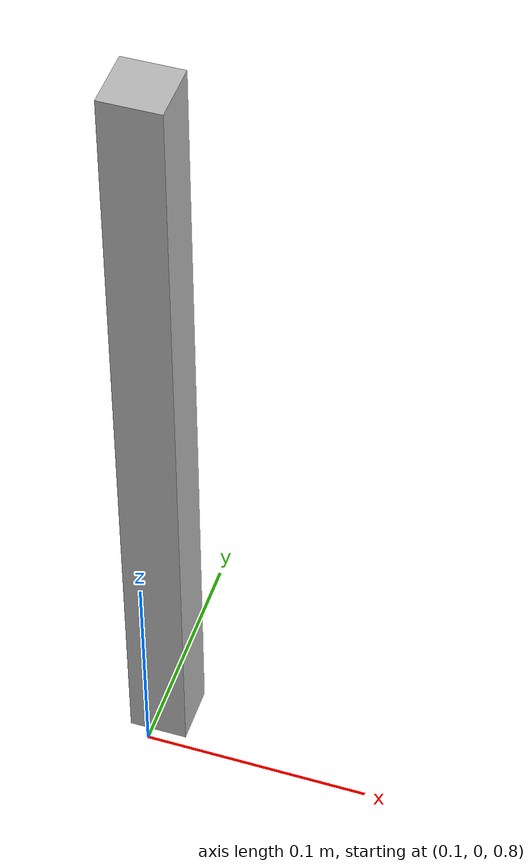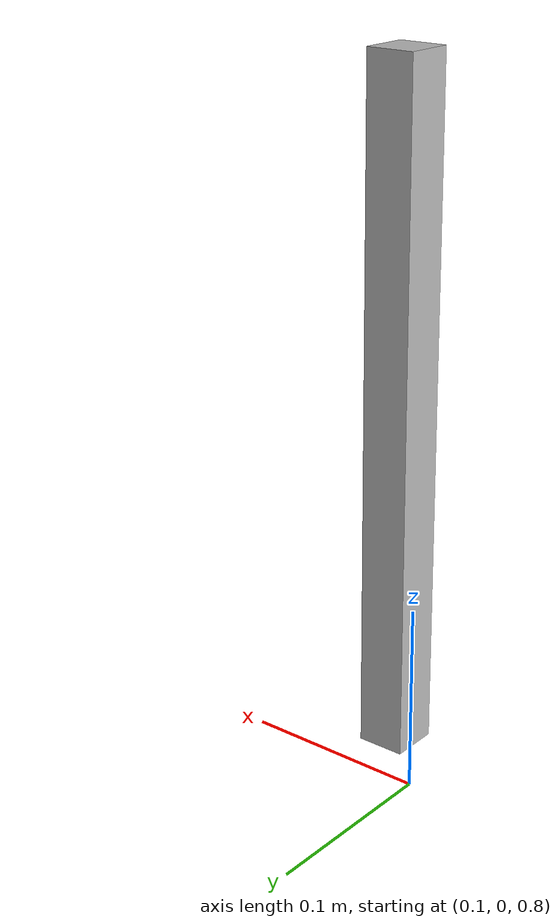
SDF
<?xml version="1.0"?>
<sdf version="1.6">
  <world name="default">

    <physics type="dart">
      <real_time_update_rate>0.000000</real_time_update_rate>
    </physics>

    <include>
      <uri>model://ground_plane</uri>
    </include>

    <include>
      <uri>model://sun</uri>
    </include>

    <model name="custom_box">
      <pose>0.11 0 1 0 0 0</pose>
      <link name="link">

        <inertial>
          <mass>0.05</mass>
          <inertia>
            <ixx>0.0083</ixx>
            <ixy>0.0</ixy>
            <ixz>0.0</ixz>
            <iyy>0.0083</iyy>
            <iyz>0.0</iyz>
            <izz>0.0083</izz>
          </inertia>
        </inertial>

        <collision name="box_collision">
          <geometry>
            <box>
              <size>0.025 0.025 0.35</size>
            </box>
          </geometry>
        </collision>

        <visual name="visual">
          <geometry>
            <box>
              <size>0.025 0.025 0.35</size>
            </box>
          </geometry>
        </visual>

        <sensor name='contact_sensor' type='contact'>
          <contact>
            <collision>box_collision</collision>
          </contact>
          <update_rate>0.2</update_rate>
          <!-- Gazebo contact plugin -->
          <plugin name="contact_plugin" filename="libContactSensorPlugin.so">
          </plugin>
        </sensor>

      </link>
    </model>
  </world>
</sdf>
